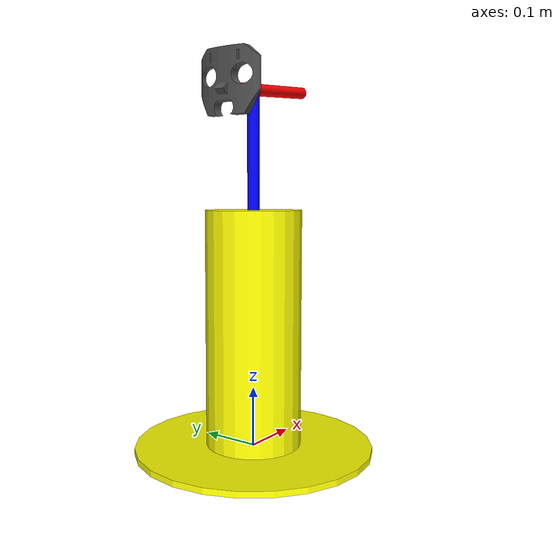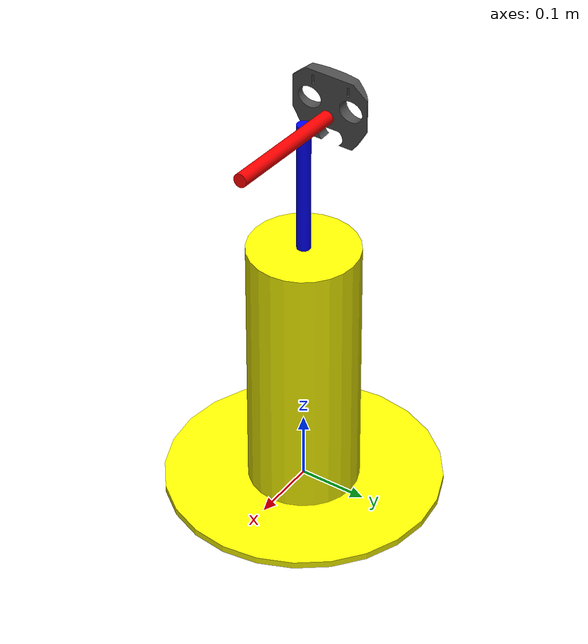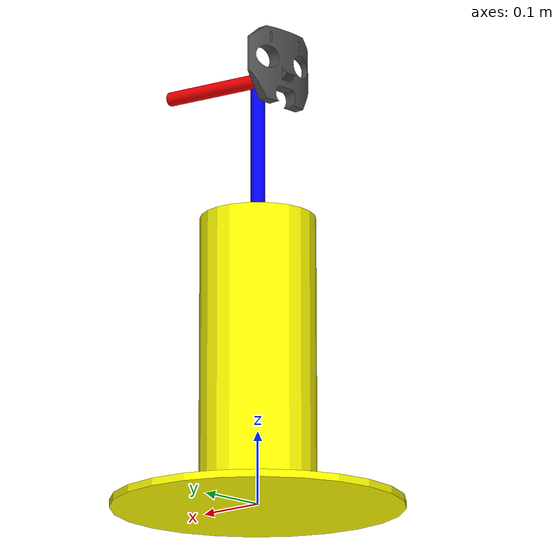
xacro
<?xml version="1.0"?>

<robot xmlns:xacro="http://www.ros.org/wiki/xacro"
 	xmlns:sensor="http://playerstage.sourceforge.net/gazebo/xmlschema/#sensor"
    	xmlns:controller="http://playerstage.sourceforge.net/gazebo/xmlschema/#controller"
    	xmlns:interface="http://playerstage.sourceforge.net/gazebo/xmlschema/#interface"
	name="shuk_face">

	<xacro:property name="base_link_length" value="0.01" />
	<xacro:property name="base_link_radius" value="0.2" />

	<xacro:property name="pan_link_length" value="0.2" />
	<xacro:property name="pan_link_radius" value="0.01" />

	<xacro:property name="torso_link_length" value="0.4" />
	<xacro:property name="torso_link_radius" value="0.08" />

	<xacro:property name="tilt_link_length" value="0.2" />
	<xacro:property name="tilt_link_radius" value="0.01" />

	<xacro:macro name="inertial_matrix" params="mass">
               <inertial>
                       <mass value="${mass}" />
                       <inertia ixx="0.5" ixy="0.0" ixz="0.0"
                                iyy="0.5" iyz="0.0"
                                izz="0.5" />
               </inertial>
	</xacro:macro>

  <link name="base_link">

    <visual>
      <geometry>
	<cylinder length="${base_link_length}" radius="${base_link_radius}"/>
      </geometry>
      <origin rpy="0 0 0" xyz="0 0 0"/>
      <material name="yellow">
        <color rgba="1 1 0 1"/>
      </material>
    </visual>

    <collision>
      <geometry>
	<cylinder length="${base_link_length+0.02}" radius="0.2"/>
      </geometry>
      <origin rpy="0 0 0" xyz="0 0 0"/>
    </collision>
	<xacro:inertial_matrix mass="1"/>
  </link>

  <link name="torso_link">

    <visual>
      <geometry>
	<cylinder length="${torso_link_length}" radius="${torso_link_radius}"/>
      </geometry>
      <origin rpy="0 0 0" xyz="0 0 ${torso_link_length/2}"/>
      <material name="yellow">
        <color rgba="1 1 0 1"/>
      </material>
    </visual>

    <collision>
      <geometry>
	<cylinder length="${torso_link_length+0.02}" radius="0.2"/>
      </geometry>
      <origin rpy="0 0 0" xyz="0 0 0"/>
    </collision>
	<xacro:inertial_matrix mass="1"/>
  </link>

  <joint name="torso_joint" type="fixed">
    <parent link="base_link"/>
    <child link="torso_link"/>
    <origin xyz="0 0 0"/>
    <axis xyz="0 0 1" />
  </joint>

  <joint name="pan_joint" type="revolute">
    <parent link="torso_link"/>
    <child link="pan_link"/>
    <origin xyz="0 0 0"/>
    <axis xyz="0 0 1" />
    <limit effort="300" velocity="0.2" lower="-1.57" upper="1.57"/>
    <dynamics damping="10" friction="1"/>
  </joint>

  <link name="pan_link">
    <visual>
      <geometry>
	<cylinder length="${pan_link_length}" radius="${pan_link_radius}"/>
      </geometry>
      <origin rpy="0 0 0" xyz="0 0 ${torso_link_length+pan_link_length/2}"/>
      <material name="red">
        <color rgba="0 0 1 1"/>
      </material>
    </visual>
    <collision>
      <geometry>
	<cylinder length="${pan_link_length}" radius="${pan_link_radius+0.02}"/>
      </geometry>
      <origin rpy="0 0 0" xyz="0 0 0.09"/>
    </collision>
	<xacro:inertial_matrix mass="1"/>
  </link>

  <joint name="tilt_joint" type="revolute">
    <parent link="pan_link"/>
    <child link="tilt_link"/>
    <origin xyz="0.06 ${pan_link_radius} ${pan_link_length+torso_link_length}"/>
    <axis xyz="0 1 0" />
    <limit effort="300" velocity="0.1" lower="-1.57" upper="1.57"/>
    <dynamics damping="50" friction="1"/>
  </joint>
  <link name="tilt_link">
    <visual>
      <geometry>
	<cylinder length="${tilt_link_length}" radius="${tilt_link_radius}"/>
      </geometry>
      <origin rpy="0 1.5 0" xyz="0 0 0"/>
      <material name="green">
        <color rgba="1 0 0 1"/>
      </material>
    </visual>
    <collision>
      <geometry>
	<cylinder length="${tilt_link_length}" radius="${tilt_link_radius+0.2}"/>
      </geometry>
      <origin rpy="0 1.5 0" xyz="0 0 0"/>
    </collision>
	<xacro:inertial_matrix mass="1"/>
  </link>
  <joint name="face_joint" type="fixed">
    <parent link="tilt_link"/>
    <child link="face_link"/>
    <origin xyz="-0.12 0 -0.05"/>
    <axis xyz="0 0 0" />
  </joint>
  <link name="face_link">
	<visual>
		<origin xyz="0 0 0" rpy="0 0 0"/>
	<geometry>
		<mesh filename="package://shuk_face/meshes/new_face.dae"/>
	</geometry>
	<material name="DarkGrey"/>
	</visual>
	<xacro:inertial_matrix mass="1"/>
  </link>
</robot>
